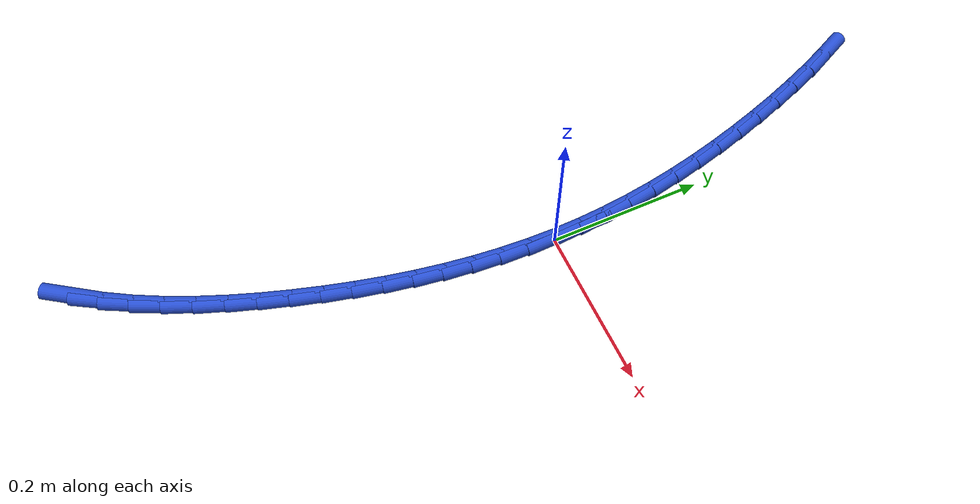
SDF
<sdf version="1.6">
 <world name="default">
  <model name="ground_plane">
   <static>1</static>
   <link name="link">
    <collision name="collision">
     <geometry><plane><normal>0 0 1</normal><size>100 100</size></plane></geometry>
     <surface><friction><ode><mu>100</mu><mu2>50</mu2></ode></friction></surface>
    </collision>
    <visual name="visual">
     <cast_shadows>0</cast_shadows>
     <geometry><plane><normal>0 0 1</normal><size>100 100</size></plane></geometry>
     <material>
      <script><uri>file://media/materials/scripts/gazebo.material</uri><name>Gazebo/WhiteGlow</name></script>
     </material>
    </visual>
   </link>
  </model>
  <model name="line">
   <link name="link_0">
    <pose>-3.469446951953614e-18 -1.1796119636642288e-16 0.01 0 1.57 -1.5491380946228126</pose>
    <collision name="collision">
     <geometry><cylinder><radius>0.01</radius><length>0.08</length></cylinder></geometry>
    </collision>
    <visual name="visual">
     <material>
      <script><name>Gazebo/Blue</name><uri>file://media/materials/scripts/gazebo.material</uri></script>
     </material>
     <geometry><cylinder><radius>0.01</radius><length>0.08</length></cylinder></geometry>
    </visual>
   </link>
   <link name="link_1">
    <pose>-0.0007798753378044431 0.03600263339787785 0.01 0 1.57 -1.5088348567655554</pose>
    <collision name="collision">
     <geometry><cylinder><radius>0.01</radius><length>0.08</length></cylinder></geometry>
    </collision>
    <visual name="visual">
     <material>
      <script><name>Gazebo/Blue</name><uri>file://media/materials/scripts/gazebo.material</uri></script>
     </material>
     <geometry><cylinder><radius>0.01</radius><length>0.08</length></cylinder></geometry>
    </visual>
   </link>
   <link name="link_2">
    <pose>-0.0030126451728320043 0.07199131692479639 0.01 0 1.57 -1.4704603669537422</pose>
    <collision name="collision">
     <geometry><cylinder><radius>0.01</radius><length>0.08</length></cylinder></geometry>
    </collision>
    <visual name="visual">
     <material>
      <script><name>Gazebo/Blue</name><uri>file://media/materials/scripts/gazebo.material</uri></script>
     </material>
     <geometry><cylinder><radius>0.01</radius><length>0.08</length></cylinder></geometry>
    </visual>
   </link>
   <link name="link_3">
    <pose>-0.006635128885073642 0.10797362412059247 0.01 0 1.57 -1.4341181131902399</pose>
    <collision name="collision">
     <geometry><cylinder><radius>0.01</radius><length>0.08</length></cylinder></geometry>
    </collision>
    <visual name="visual">
     <material>
      <script><name>Gazebo/Blue</name><uri>file://media/materials/scripts/gazebo.material</uri></script>
     </material>
     <geometry><cylinder><radius>0.01</radius><length>0.08</length></cylinder></geometry>
    </visual>
   </link>
   <link name="link_4">
    <pose>-0.011584145854520302 0.14395712852510292 0.01 0 1.57 -1.3998775129006569</pose>
    <collision name="collision">
     <geometry><cylinder><radius>0.01</radius><length>0.08</length></cylinder></geometry>
    </collision>
    <visual name="visual">
     <material>
      <script><name>Gazebo/Blue</name><uri>file://media/materials/scripts/gazebo.material</uri></script>
     </material>
     <geometry><cylinder><radius>0.01</radius><length>0.08</length></cylinder></geometry>
    </visual>
   </link>
   <link name="link_5">
    <pose>-0.017796515461162947 0.1799494036781647 0.01 0 1.57 -1.367777689535852</pose>
    <collision name="collision">
     <geometry><cylinder><radius>0.01</radius><length>0.08</length></cylinder></geometry>
    </collision>
    <visual name="visual">
     <material>
      <script><name>Gazebo/Blue</name><uri>file://media/materials/scripts/gazebo.material</uri></script>
     </material>
     <geometry><cylinder><radius>0.01</radius><length>0.08</length></cylinder></geometry>
    </visual>
   </link>
   <link name="link_6">
    <pose>-0.02520905708499252 0.21595802311961457 0.01 0 1.57 -1.3378318157825284</pose>
    <collision name="collision">
     <geometry><cylinder><radius>0.01</radius><length>0.08</length></cylinder></geometry>
    </collision>
    <visual name="visual">
     <material>
      <script><name>Gazebo/Blue</name><uri>file://media/materials/scripts/gazebo.material</uri></script>
     </material>
     <geometry><cylinder><radius>0.01</radius><length>0.08</length></cylinder></geometry>
    </visual>
   </link>
   <link name="link_7">
    <pose>-0.03375859010599997 0.2519905603892895 0.01 0 1.57 -1.3100316401068735</pose>
    <collision name="collision">
     <geometry><cylinder><radius>0.01</radius><length>0.08</length></cylinder></geometry>
    </collision>
    <visual name="visual">
     <material>
      <script><name>Gazebo/Blue</name><uri>file://media/materials/scripts/gazebo.material</uri></script>
     </material>
     <geometry><cylinder><radius>0.01</radius><length>0.08</length></cylinder></geometry>
    </visual>
   </link>
   <link name="link_8">
    <pose>-0.043381933904176266 0.28805458902702635 0.01 0 1.57 -1.2843519016128713</pose>
    <collision name="collision">
     <geometry><cylinder><radius>0.01</radius><length>0.08</length></cylinder></geometry>
    </collision>
    <visual name="visual">
     <material>
      <script><name>Gazebo/Blue</name><uri>file://media/materials/scripts/gazebo.material</uri></script>
     </material>
     <geometry><cylinder><radius>0.01</radius><length>0.08</length></cylinder></geometry>
    </visual>
   </link>
   <link name="link_9">
    <pose>-0.054015907859512366 0.3241576825726622 0.01 0 1.57 -1.2600398146654306</pose>
    <collision name="collision">
     <geometry><cylinder><radius>0.01</radius><length>0.08</length></cylinder></geometry>
    </collision>
    <visual name="visual">
     <material>
      <script><name>Gazebo/Blue</name><uri>file://media/materials/scripts/gazebo.material</uri></script>
     </material>
     <geometry><cylinder><radius>0.01</radius><length>0.08</length></cylinder></geometry>
    </visual>
   </link>
   <link name="link_10">
    <pose>-0.0656164149120683 0.36027812225615513 0.01 0 1.57 -1.2339961770029053</pose>
    <collision name="collision">
     <geometry><cylinder><radius>0.01</radius><length>0.08</length></cylinder></geometry>
    </collision>
    <visual name="visual">
     <material>
      <script><name>Gazebo/Blue</name><uri>file://media/materials/scripts/gazebo.material</uri></script>
     </material>
     <geometry><cylinder><radius>0.01</radius><length>0.08</length></cylinder></geometry>
    </visual>
   </link>
   <link name="link_11">
    <pose>-0.07821920557809857 0.3962716272731024 0.01 0 1.57 -1.205217569808733</pose>
    <collision name="collision">
     <geometry><cylinder><radius>0.01</radius><length>0.08</length></cylinder></geometry>
    </collision>
    <visual name="visual">
     <material>
      <script><name>Gazebo/Blue</name><uri>file://media/materials/scripts/gazebo.material</uri></script>
     </material>
     <geometry><cylinder><radius>0.01</radius><length>0.08</length></cylinder></geometry>
    </visual>
   </link>
   <link name="link_12">
    <pose>-0.09188091065348353 0.43196186663460007 0.01 0 1.57 -1.1734392270744438</pose>
    <collision name="collision">
     <geometry><cylinder><radius>0.01</radius><length>0.08</length></cylinder></geometry>
    </collision>
    <visual name="visual">
     <material>
      <script><name>Gazebo/Blue</name><uri>file://media/materials/scripts/gazebo.material</uri></script>
     </material>
     <geometry><cylinder><radius>0.01</radius><length>0.08</length></cylinder></geometry>
    </visual>
   </link>
   <link name="link_13">
    <pose>-0.10665816100146167 0.4671725092483526 0.01 0 1.57 -1.1383623896500155</pose>
    <collision name="collision">
     <geometry><cylinder><radius>0.01</radius><length>0.08</length></cylinder></geometry>
    </collision>
    <visual name="visual">
     <material>
      <script><name>Gazebo/Blue</name><uri>file://media/materials/scripts/gazebo.material</uri></script>
     </material>
     <geometry><cylinder><radius>0.01</radius><length>0.08</length></cylinder></geometry>
    </visual>
   </link>
   <link name="link_174">
    <pose>-0.16393720420767094 -0.5594600899955428 0.01 0 1.57 0.9771164276467748</pose>
    <collision name="collision">
     <geometry><cylinder><radius>0.01</radius><length>0.08</length></cylinder></geometry>
    </collision>
    <visual name="visual">
     <material>
      <script><name>Gazebo/Blue</name><uri>file://media/materials/scripts/gazebo.material</uri></script>
     </material>
     <geometry><cylinder><radius>0.01</radius><length>0.08</length></cylinder></geometry>
    </visual>
   </link>
   <link name="link_175">
    <pose>-0.14368020753150282 -0.5294452089494183 0.01 0 1.57 1.0411822708985312</pose>
    <collision name="collision">
     <geometry><cylinder><radius>0.01</radius><length>0.08</length></cylinder></geometry>
    </collision>
    <visual name="visual">
     <material>
      <script><name>Gazebo/Blue</name><uri>file://media/materials/scripts/gazebo.material</uri></script>
     </material>
     <geometry><cylinder><radius>0.01</radius><length>0.08</length></cylinder></geometry>
    </visual>
   </link>
   <link name="link_176">
    <pose>-0.12514500337567291 -0.4977826780566325 0.01 0 1.57 1.0971507506026021</pose>
    <collision name="collision">
     <geometry><cylinder><radius>0.01</radius><length>0.08</length></cylinder></geometry>
    </collision>
    <visual name="visual">
     <material>
      <script><name>Gazebo/Blue</name><uri>file://media/materials/scripts/gazebo.material</uri></script>
     </material>
     <geometry><cylinder><radius>0.01</radius><length>0.08</length></cylinder></geometry>
    </visual>
   </link>
   <link name="link_177">
    <pose>-0.1082092517536003 -0.4647412203783431 0.01 0 1.57 1.145743529631656</pose>
    <collision name="collision">
     <geometry><cylinder><radius>0.01</radius><length>0.08</length></cylinder></geometry>
    </collision>
    <visual name="visual">
     <material>
      <script><name>Gazebo/Blue</name><uri>file://media/materials/scripts/gazebo.material</uri></script>
     </material>
     <geometry><cylinder><radius>0.01</radius><length>0.08</length></cylinder></geometry>
    </visual>
   </link>
   <link name="link_178">
    <pose>-0.09275061267870406 -0.43058955897570733 0.01 0 1.57 1.187666342935511</pose>
    <collision name="collision">
     <geometry><cylinder><radius>0.01</radius><length>0.08</length></cylinder></geometry>
    </collision>
    <visual name="visual">
     <material>
      <script><name>Gazebo/Blue</name><uri>file://media/materials/scripts/gazebo.material</uri></script>
     </material>
     <geometry><cylinder><radius>0.01</radius><length>0.08</length></cylinder></geometry>
    </visual>
   </link>
   <link name="link_179">
    <pose>-0.07864674616440348 -0.3955964169098837 0.01 0 1.57 1.2235564018647638</pose>
    <collision name="collision">
     <geometry><cylinder><radius>0.01</radius><length>0.08</length></cylinder></geometry>
    </collision>
    <visual name="visual">
     <material>
      <script><name>Gazebo/Blue</name><uri>file://media/materials/scripts/gazebo.material</uri></script>
     </material>
     <geometry><cylinder><radius>0.01</radius><length>0.08</length></cylinder></geometry>
    </visual>
   </link>
   <link name="link_180">
    <pose>-0.06577531222411709 -0.3600305172420281 0.01 0 1.57 1.2539540431578504</pose>
    <collision name="collision">
     <geometry><cylinder><radius>0.01</radius><length>0.08</length></cylinder></geometry>
    </collision>
    <visual name="visual">
     <material>
      <script><name>Gazebo/Blue</name><uri>file://media/materials/scripts/gazebo.material</uri></script>
     </material>
     <geometry><cylinder><radius>0.01</radius><length>0.08</length></cylinder></geometry>
    </visual>
   </link>
   <link name="link_181">
    <pose>-0.05401397097287721 -0.3241605828860179 0.01 0 1.57 1.2804418297780296</pose>
    <collision name="collision">
     <geometry><cylinder><radius>0.01</radius><length>0.08</length></cylinder></geometry>
    </collision>
    <visual name="visual">
     <material>
      <script><name>Gazebo/Blue</name><uri>file://media/materials/scripts/gazebo.material</uri></script>
     </material>
     <geometry><cylinder><radius>0.01</radius><length>0.08</length></cylinder></geometry>
    </visual>
   </link>
   <link name="link_182">
    <pose>-0.043271881418066545 -0.2882096813754573 0.01 0 1.57 1.3076619552959916</pose>
    <collision name="collision">
     <geometry><cylinder><radius>0.01</radius><length>0.08</length></cylinder></geometry>
    </collision>
    <visual name="visual">
     <material>
      <script><name>Gazebo/Blue</name><uri>file://media/materials/scripts/gazebo.material</uri></script>
     </material>
     <geometry><cylinder><radius>0.01</radius><length>0.08</length></cylinder></geometry>
    </visual>
   </link>
   <link name="link_183">
    <pose>-0.03357865642362767 -0.2522262910372756 0.01 0 1.57 1.3367284102977544</pose>
    <collision name="collision">
     <geometry><cylinder><radius>0.01</radius><length>0.08</length></cylinder></geometry>
    </collision>
    <visual name="visual">
     <material>
      <script><name>Gazebo/Blue</name><uri>file://media/materials/scripts/gazebo.material</uri></script>
     </material>
     <geometry><cylinder><radius>0.01</radius><length>0.08</length></cylinder></geometry>
    </visual>
   </link>
   <link name="link_184">
    <pose>-0.024992697309168147 -0.21621716340127525 0.01 0 1.57 1.3676781739704291</pose>
    <collision name="collision">
     <geometry><cylinder><radius>0.01</radius><length>0.08</length></cylinder></geometry>
    </collision>
    <visual name="visual">
     <material>
      <script><name>Gazebo/Blue</name><uri>file://media/materials/scripts/gazebo.material</uri></script>
     </material>
     <geometry><cylinder><radius>0.01</radius><length>0.08</length></cylinder></geometry>
    </visual>
   </link>
   <link name="link_185">
    <pose>-0.01757240539429552 -0.1801890499972583 0.01 0 1.57 1.400536196979783</pose>
    <collision name="collision">
     <geometry><cylinder><radius>0.01</radius><length>0.08</length></cylinder></geometry>
    </collision>
    <visual name="visual">
     <material>
      <script><name>Gazebo/Blue</name><uri>file://media/materials/scripts/gazebo.material</uri></script>
     </material>
     <geometry><cylinder><radius>0.01</radius><length>0.08</length></cylinder></geometry>
    </visual>
   </link>
   <link name="link_186">
    <pose>-0.011376181998617455 -0.1441487023550276 0.01 0 1.57 1.435311835119538</pose>
    <collision name="collision">
     <geometry><cylinder><radius>0.01</radius><length>0.08</length></cylinder></geometry>
    </collision>
    <visual name="visual">
     <material>
      <script><name>Gazebo/Blue</name><uri>file://media/materials/scripts/gazebo.material</uri></script>
     </material>
     <geometry><cylinder><radius>0.01</radius><length>0.08</length></cylinder></geometry>
    </visual>
   </link>
   <link name="link_187">
    <pose>-0.006462428441741238 -0.10810287200438379 0.01 0 1.57 1.4719950408453</pose>
    <collision name="collision">
     <geometry><cylinder><radius>0.01</radius><length>0.08</length></cylinder></geometry>
    </collision>
    <visual name="visual">
     <material>
      <script><name>Gazebo/Blue</name><uri>file://media/materials/scripts/gazebo.material</uri></script>
     </material>
     <geometry><cylinder><radius>0.01</radius><length>0.08</length></cylinder></geometry>
    </visual>
   </link>
   <link name="link_188">
    <pose>-0.002889546043274554 -0.07205831047512982 0.01 0 1.57 1.510552484369875</pose>
    <collision name="collision">
     <geometry><cylinder><radius>0.01</radius><length>0.08</length></cylinder></geometry>
    </collision>
    <visual name="visual">
     <material>
      <script><name>Gazebo/Blue</name><uri>file://media/materials/scripts/gazebo.material</uri></script>
     </material>
     <geometry><cylinder><radius>0.01</radius><length>0.08</length></cylinder></geometry>
    </visual>
   </link>
   <link name="link_189">
    <pose>-0.0007159361228249554 -0.03602176929706784 0.01 0 1.57 1.5509238471924696</pose>
    <collision name="collision">
     <geometry><cylinder><radius>0.01</radius><length>0.08</length></cylinder></geometry>
    </collision>
    <visual name="visual">
     <material>
      <script><name>Gazebo/Blue</name><uri>file://media/materials/scripts/gazebo.material</uri></script>
     </material>
     <geometry><cylinder><radius>0.01</radius><length>0.08</length></cylinder></geometry>
    </visual>
   </link>
   <link name="link_190">
    <pose>1.1275702593849246e-17 6.938893903907228e-18 0.01 0 1.57 -1.5485740541504847</pose>
    <collision name="collision">
     <geometry><cylinder><radius>0.01</radius><length>0.08</length></cylinder></geometry>
    </collision>
    <visual name="visual">
     <material>
      <script><name>Gazebo/Blue</name><uri>file://media/materials/scripts/gazebo.material</uri></script>
     </material>
     <geometry><cylinder><radius>0.01</radius><length>0.08</length></cylinder></geometry>
    </visual>
   </link>
   <link name="link_191">
    <pose>-0.0008001389944071978 0.03600024588627158 0.01 0 1.57 -1.5485740541504853</pose>
    <collision name="collision">
     <geometry><cylinder><radius>0.01</radius><length>0.08</length></cylinder></geometry>
    </collision>
    <visual name="visual">
     <material>
      <script><name>Gazebo/Blue</name><uri>file://media/materials/scripts/gazebo.material</uri></script>
     </material>
     <geometry><cylinder><radius>0.01</radius><length>0.08</length></cylinder></geometry>
    </visual>
   </link>
  </model>
 </world>
</sdf>
